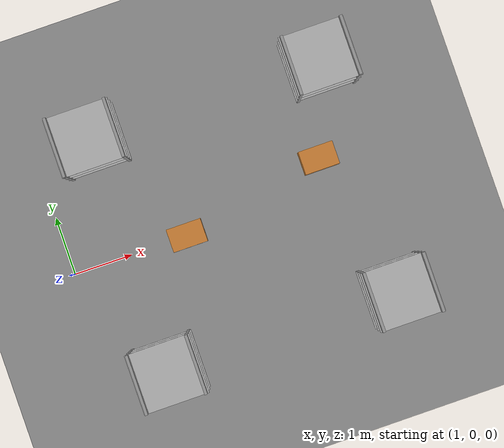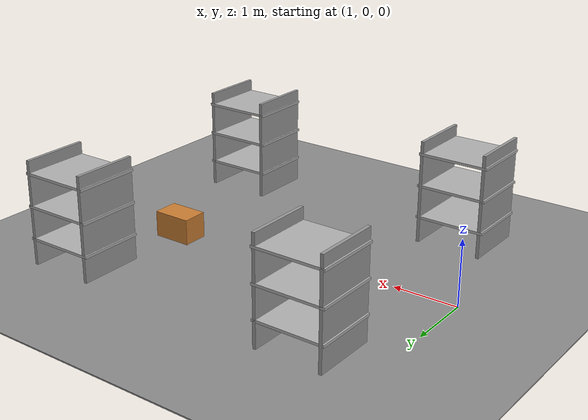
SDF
<sdf version="1.9">
 <world name="warehouse_world">
  <plugin name="ignition::gazebo::systems::Physics" filename="ignition-gazebo-physics-system"/>
  <plugin name="ignition::gazebo::systems::UserCommands" filename="ignition-gazebo-user-commands-system"/>
  <plugin name="ignition::gazebo::systems::SceneBroadcaster" filename="ignition-gazebo-scene-broadcaster-system"/>
  <plugin name="ignition::gazebo::systems::Contact" filename="ignition-gazebo-contact-system"/>
  <scene><ambient>0.4 0.4 0.4 1</ambient><background>0.8 0.8 0.8 1</background></scene>
  <light name="overhead" type="point">
   <pose>4 0 5 0 0 0</pose>
   <diffuse>1 1 1 1</diffuse>
   <specular>0.2 0.2 0.2 1</specular>
   <attenuation>
    <range>30</range>
    <constant>0.6</constant>
    <linear>0.01</linear>
    <quadratic>0.001</quadratic>
   </attenuation>
   <cast_shadows>0</cast_shadows>
  </light>
  <include><uri>model://floor_concrete</uri><name>floor</name></include>
  <include><uri>model://shelf_simple</uri><name>shelf_a1</name><pose>2.0 -2.0 0 0 0 0</pose></include>
  <include><uri>model://shelf_simple</uri><name>shelf_a2</name><pose>6.0 -2.0 0 0 0 0</pose></include>
  <include><uri>model://shelf_simple</uri><name>shelf_b1</name><pose>2.0  2.0 0 0 0 0</pose></include>
  <include><uri>model://shelf_simple</uri><name>shelf_b2</name><pose>6.0  2.0 0 0 0 0</pose></include>
  <include><uri>model://pallet_box</uri><name>box1</name><pose>3.0 0.0 0.2 0 0 0</pose></include>
  <include><uri>model://pallet_box</uri><name>box2</name><pose>5.5 0.5 0.2 0 0 0</pose></include>
 </world>
</sdf>

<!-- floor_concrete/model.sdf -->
<sdf version="1.9">
  <model name="floor_concrete">
    <static>true</static>
    <pose>0 0 -0.01 0 0 0</pose> <!-- tiny drop so top is above z=0 -->
    <link name="floor">
      <visual name="v">
        <geometry>
          <box><size>40 40 0.02</size></box>
        </geometry>
        <material>
          <ambient>0.55 0.55 0.55 1</ambient>
          <diffuse>0.55 0.55 0.55 1</diffuse>
          <specular>0.1 0.1 0.1 1</specular>
        </material>
      </visual>
      <collision name="c">
        <geometry>
          <box><size>40 40 0.02</size></box>
        </geometry>
      </collision>
    </link>
  </model>
</sdf>

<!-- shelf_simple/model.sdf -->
<sdf version="1.9">
  <model name="shelf_simple">
    <static>true</static>

    <link name="upright_left">
      <pose>-0.5 0 0.8 0 0 0</pose>
      <visual name="v">
        <geometry><box><size>0.05 1.0 1.6</size></box></geometry>
        <material><ambient>0.6 0.6 0.6 1</ambient><diffuse>0.6 0.6 0.6 1</diffuse></material>
      </visual>
      <collision name="c"><geometry><box><size>0.05 1.0 1.6</size></box></geometry></collision>
    </link>

    <link name="upright_right">
      <pose>0.5 0 0.8 0 0 0</pose>
      <visual name="v">
        <geometry><box><size>0.05 1.0 1.6</size></box></geometry>
        <material><ambient>0.6 0.6 0.6 1</ambient><diffuse>0.6 0.6 0.6 1</diffuse></material>
      </visual>
      <collision name="c"><geometry><box><size>0.05 1.0 1.6</size></box></geometry></collision>
    </link>

    <link name="shelf1">
      <pose>0 0 1.4 0 0 0</pose>
      <visual name="v">
        <geometry><box><size>1.1 1.0 0.04</size></box></geometry>
        <material><ambient>0.7 0.7 0.7 1</ambient><diffuse>0.7 0.7 0.7 1</diffuse></material>
      </visual>
      <collision name="c"><geometry><box><size>1.1 1.0 0.04</size></box></geometry></collision>
    </link>

    <link name="shelf2">
      <pose>0 0 0.9 0 0 0</pose>
      <visual name="v">
        <geometry><box><size>1.1 1.0 0.04</size></box></geometry>
        <material><ambient>0.7 0.7 0.7 1</ambient><diffuse>0.7 0.7 0.7 1</diffuse></material>
      </visual>
      <collision name="c"><geometry><box><size>1.1 1.0 0.04</size></box></geometry></collision>
    </link>

    <link name="shelf3">
      <pose>0 0 0.4 0 0 0</pose>
      <visual name="v">
        <geometry><box><size>1.1 1.0 0.04</size></box></geometry>
        <material><ambient>0.7 0.7 0.7 1</ambient><diffuse>0.7 0.7 0.7 1</diffuse></material>
      </visual>
      <collision name="c"><geometry><box><size>1.1 1.0 0.04</size></box></geometry></collision>
    </link>
  </model>
</sdf>

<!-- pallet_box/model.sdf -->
<sdf version="1.9">
  <model name="pallet_box">
    <static>true</static>
    <link name="box">
      <visual name="v">
        <geometry><box><size>0.6 0.4 0.4</size></box></geometry>
        <material><ambient>0.8 0.5 0.2 1</ambient><diffuse>0.8 0.5 0.2 1</diffuse></material>
      </visual>
      <collision name="c"><geometry><box><size>0.6 0.4 0.4</size></box></geometry></collision>
    </link>
  </model>
</sdf>
